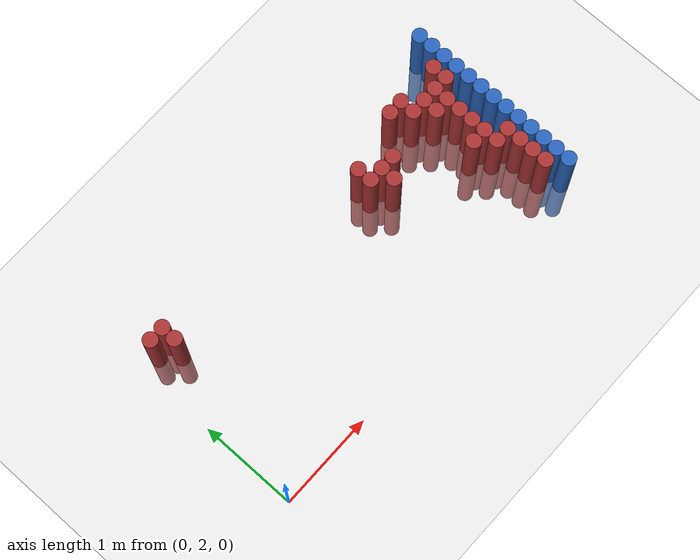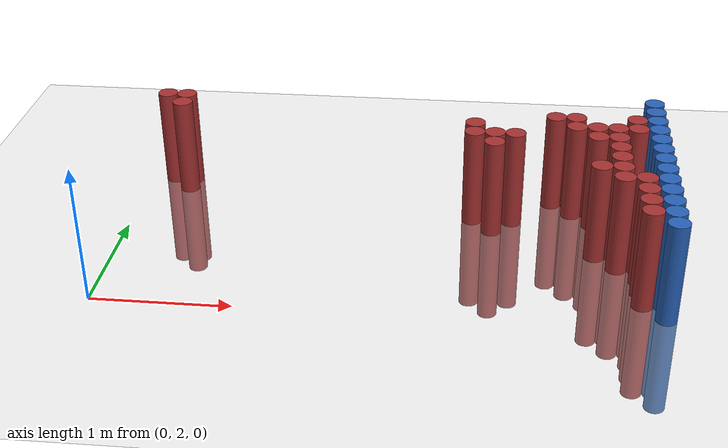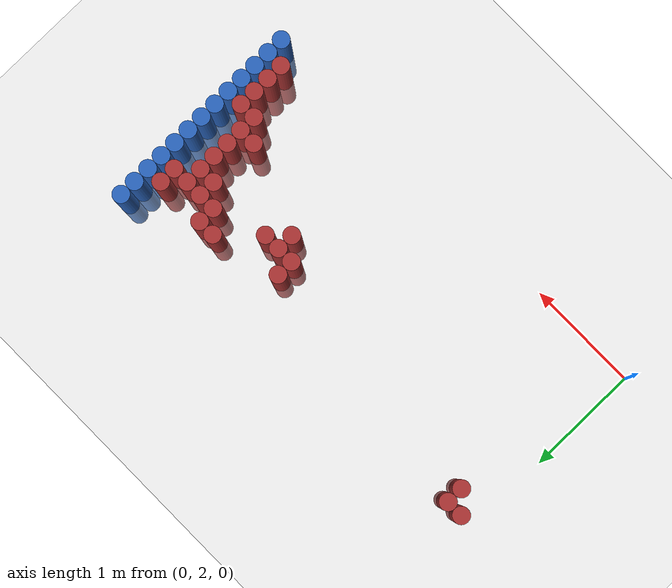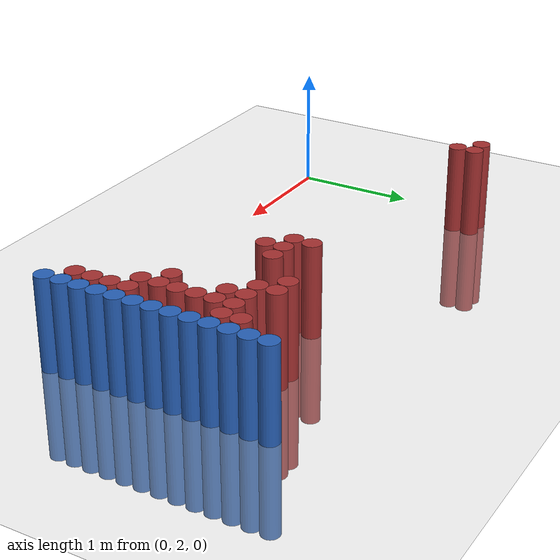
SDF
<sdf version="1.6">
 <world name="default">
  <model name="ground_plane">
   <static>1</static>
   <link name="link">
    <collision name="collision">
     <geometry><plane><normal>0 0 1</normal><size>100 100</size></plane></geometry>
     <surface><friction><ode><mu>100</mu><mu2>50</mu2></ode></friction></surface>
    </collision>
    <visual name="visual">
     <cast_shadows>0</cast_shadows>
     <geometry><plane><normal>0 0 1</normal><size>100 100</size></plane></geometry>
     <material>
      <script><uri>file://media/materials/scripts/gazebo.material</uri><name>Gazebo/Grey</name></script>
     </material>
    </visual>
   </link>
  </model>
  <model name="unit_cylinder_144">
   <static>1</static>
   <pose>3.925000 2.275000 0.000000 0.000000 0.000000 0.000000</pose>
   <link name="link">
    <inertial>
     <mass>1</mass>
     <inertia><ixx>0.145833</ixx><ixy>0</ixy><ixz>0</ixz><iyy>0.145833</iyy><iyz>0</iyz><izz>0.125</izz></inertia>
    </inertial>
    <collision name="collision">
     <geometry><cylinder><radius>0.075000</radius><length>1.5</length></cylinder></geometry>
    </collision>
    <visual name="visual">
     <geometry><cylinder><radius>0.075000</radius><length>1.5</length></cylinder></geometry>
     <material>
      <ambient>0.152000 0.379000 0.720000 1</ambient>
      <diffuse>0.152000 0.379000 0.720000 1</diffuse>
     </material>
     <material>
      <script><name>Gazebo/Grey</name><uri>file://media/materials/scripts/gazebo.material</uri></script>
     </material>
    </visual>
   </link>
  </model>
  <model name="unit_cylinder_146">
   <static>1</static>
   <pose>3.925000 2.425000 0.000000 0.000000 0.000000 0.000000</pose>
   <link name="link">
    <inertial>
     <mass>1</mass>
     <inertia><ixx>0.145833</ixx><ixy>0</ixy><ixz>0</ixz><iyy>0.145833</iyy><iyz>0</iyz><izz>0.125</izz></inertia>
    </inertial>
    <collision name="collision">
     <geometry><cylinder><radius>0.075000</radius><length>1.5</length></cylinder></geometry>
    </collision>
    <visual name="visual">
     <geometry><cylinder><radius>0.075000</radius><length>1.5</length></cylinder></geometry>
     <material>
      <ambient>0.152000 0.379000 0.720000 1</ambient>
      <diffuse>0.152000 0.379000 0.720000 1</diffuse>
     </material>
     <material>
      <script><name>Gazebo/Grey</name><uri>file://media/materials/scripts/gazebo.material</uri></script>
     </material>
    </visual>
   </link>
  </model>
  <model name="unit_cylinder_148">
   <static>1</static>
   <pose>3.925000 2.575000 0.000000 0.000000 0.000000 0.000000</pose>
   <link name="link">
    <inertial>
     <mass>1</mass>
     <inertia><ixx>0.145833</ixx><ixy>0</ixy><ixz>0</ixz><iyy>0.145833</iyy><iyz>0</iyz><izz>0.125</izz></inertia>
    </inertial>
    <collision name="collision">
     <geometry><cylinder><radius>0.075000</radius><length>1.5</length></cylinder></geometry>
    </collision>
    <visual name="visual">
     <geometry><cylinder><radius>0.075000</radius><length>1.5</length></cylinder></geometry>
     <material>
      <ambient>0.152000 0.379000 0.720000 1</ambient>
      <diffuse>0.152000 0.379000 0.720000 1</diffuse>
     </material>
     <material>
      <script><name>Gazebo/Grey</name><uri>file://media/materials/scripts/gazebo.material</uri></script>
     </material>
    </visual>
   </link>
  </model>
  <model name="unit_cylinder_150">
   <static>1</static>
   <pose>3.925000 2.725000 0.000000 0.000000 0.000000 0.000000</pose>
   <link name="link">
    <inertial>
     <mass>1</mass>
     <inertia><ixx>0.145833</ixx><ixy>0</ixy><ixz>0</ixz><iyy>0.145833</iyy><iyz>0</iyz><izz>0.125</izz></inertia>
    </inertial>
    <collision name="collision">
     <geometry><cylinder><radius>0.075000</radius><length>1.5</length></cylinder></geometry>
    </collision>
    <visual name="visual">
     <geometry><cylinder><radius>0.075000</radius><length>1.5</length></cylinder></geometry>
     <material>
      <ambient>0.152000 0.379000 0.720000 1</ambient>
      <diffuse>0.152000 0.379000 0.720000 1</diffuse>
     </material>
     <material>
      <script><name>Gazebo/Grey</name><uri>file://media/materials/scripts/gazebo.material</uri></script>
     </material>
    </visual>
   </link>
  </model>
  <model name="unit_cylinder_152">
   <static>1</static>
   <pose>3.925000 2.875000 0.000000 0.000000 0.000000 0.000000</pose>
   <link name="link">
    <inertial>
     <mass>1</mass>
     <inertia><ixx>0.145833</ixx><ixy>0</ixy><ixz>0</ixz><iyy>0.145833</iyy><iyz>0</iyz><izz>0.125</izz></inertia>
    </inertial>
    <collision name="collision">
     <geometry><cylinder><radius>0.075000</radius><length>1.5</length></cylinder></geometry>
    </collision>
    <visual name="visual">
     <geometry><cylinder><radius>0.075000</radius><length>1.5</length></cylinder></geometry>
     <material>
      <ambient>0.152000 0.379000 0.720000 1</ambient>
      <diffuse>0.152000 0.379000 0.720000 1</diffuse>
     </material>
     <material>
      <script><name>Gazebo/Grey</name><uri>file://media/materials/scripts/gazebo.material</uri></script>
     </material>
    </visual>
   </link>
  </model>
  <model name="unit_cylinder_154">
   <static>1</static>
   <pose>3.925000 3.025000 0.000000 0.000000 0.000000 0.000000</pose>
   <link name="link">
    <inertial>
     <mass>1</mass>
     <inertia><ixx>0.145833</ixx><ixy>0</ixy><ixz>0</ixz><iyy>0.145833</iyy><iyz>0</iyz><izz>0.125</izz></inertia>
    </inertial>
    <collision name="collision">
     <geometry><cylinder><radius>0.075000</radius><length>1.5</length></cylinder></geometry>
    </collision>
    <visual name="visual">
     <geometry><cylinder><radius>0.075000</radius><length>1.5</length></cylinder></geometry>
     <material>
      <ambient>0.152000 0.379000 0.720000 1</ambient>
      <diffuse>0.152000 0.379000 0.720000 1</diffuse>
     </material>
     <material>
      <script><name>Gazebo/Grey</name><uri>file://media/materials/scripts/gazebo.material</uri></script>
     </material>
    </visual>
   </link>
  </model>
  <model name="unit_cylinder_156">
   <static>1</static>
   <pose>3.925000 3.175000 0.000000 0.000000 0.000000 0.000000</pose>
   <link name="link">
    <inertial>
     <mass>1</mass>
     <inertia><ixx>0.145833</ixx><ixy>0</ixy><ixz>0</ixz><iyy>0.145833</iyy><iyz>0</iyz><izz>0.125</izz></inertia>
    </inertial>
    <collision name="collision">
     <geometry><cylinder><radius>0.075000</radius><length>1.5</length></cylinder></geometry>
    </collision>
    <visual name="visual">
     <geometry><cylinder><radius>0.075000</radius><length>1.5</length></cylinder></geometry>
     <material>
      <ambient>0.152000 0.379000 0.720000 1</ambient>
      <diffuse>0.152000 0.379000 0.720000 1</diffuse>
     </material>
     <material>
      <script><name>Gazebo/Grey</name><uri>file://media/materials/scripts/gazebo.material</uri></script>
     </material>
    </visual>
   </link>
  </model>
  <model name="unit_cylinder_158">
   <static>1</static>
   <pose>3.925000 3.325000 0.000000 0.000000 0.000000 0.000000</pose>
   <link name="link">
    <inertial>
     <mass>1</mass>
     <inertia><ixx>0.145833</ixx><ixy>0</ixy><ixz>0</ixz><iyy>0.145833</iyy><iyz>0</iyz><izz>0.125</izz></inertia>
    </inertial>
    <collision name="collision">
     <geometry><cylinder><radius>0.075000</radius><length>1.5</length></cylinder></geometry>
    </collision>
    <visual name="visual">
     <geometry><cylinder><radius>0.075000</radius><length>1.5</length></cylinder></geometry>
     <material>
      <ambient>0.152000 0.379000 0.720000 1</ambient>
      <diffuse>0.152000 0.379000 0.720000 1</diffuse>
     </material>
     <material>
      <script><name>Gazebo/Grey</name><uri>file://media/materials/scripts/gazebo.material</uri></script>
     </material>
    </visual>
   </link>
  </model>
  <model name="unit_cylinder_160">
   <static>1</static>
   <pose>3.925000 3.475000 0.000000 0.000000 0.000000 0.000000</pose>
   <link name="link">
    <inertial>
     <mass>1</mass>
     <inertia><ixx>0.145833</ixx><ixy>0</ixy><ixz>0</ixz><iyy>0.145833</iyy><iyz>0</iyz><izz>0.125</izz></inertia>
    </inertial>
    <collision name="collision">
     <geometry><cylinder><radius>0.075000</radius><length>1.5</length></cylinder></geometry>
    </collision>
    <visual name="visual">
     <geometry><cylinder><radius>0.075000</radius><length>1.5</length></cylinder></geometry>
     <material>
      <ambient>0.152000 0.379000 0.720000 1</ambient>
      <diffuse>0.152000 0.379000 0.720000 1</diffuse>
     </material>
     <material>
      <script><name>Gazebo/Grey</name><uri>file://media/materials/scripts/gazebo.material</uri></script>
     </material>
    </visual>
   </link>
  </model>
  <model name="unit_cylinder_162">
   <static>1</static>
   <pose>3.925000 3.625000 0.000000 0.000000 0.000000 0.000000</pose>
   <link name="link">
    <inertial>
     <mass>1</mass>
     <inertia><ixx>0.145833</ixx><ixy>0</ixy><ixz>0</ixz><iyy>0.145833</iyy><iyz>0</iyz><izz>0.125</izz></inertia>
    </inertial>
    <collision name="collision">
     <geometry><cylinder><radius>0.075000</radius><length>1.5</length></cylinder></geometry>
    </collision>
    <visual name="visual">
     <geometry><cylinder><radius>0.075000</radius><length>1.5</length></cylinder></geometry>
     <material>
      <ambient>0.152000 0.379000 0.720000 1</ambient>
      <diffuse>0.152000 0.379000 0.720000 1</diffuse>
     </material>
     <material>
      <script><name>Gazebo/Grey</name><uri>file://media/materials/scripts/gazebo.material</uri></script>
     </material>
    </visual>
   </link>
  </model>
  <model name="unit_cylinder_164">
   <static>1</static>
   <pose>3.925000 3.775000 0.000000 0.000000 0.000000 0.000000</pose>
   <link name="link">
    <inertial>
     <mass>1</mass>
     <inertia><ixx>0.145833</ixx><ixy>0</ixy><ixz>0</ixz><iyy>0.145833</iyy><iyz>0</iyz><izz>0.125</izz></inertia>
    </inertial>
    <collision name="collision">
     <geometry><cylinder><radius>0.075000</radius><length>1.5</length></cylinder></geometry>
    </collision>
    <visual name="visual">
     <geometry><cylinder><radius>0.075000</radius><length>1.5</length></cylinder></geometry>
     <material>
      <ambient>0.152000 0.379000 0.720000 1</ambient>
      <diffuse>0.152000 0.379000 0.720000 1</diffuse>
     </material>
     <material>
      <script><name>Gazebo/Grey</name><uri>file://media/materials/scripts/gazebo.material</uri></script>
     </material>
    </visual>
   </link>
  </model>
  <model name="unit_cylinder_166">
   <static>1</static>
   <pose>3.925000 3.925000 0.000000 0.000000 0.000000 0.000000</pose>
   <link name="link">
    <inertial>
     <mass>1</mass>
     <inertia><ixx>0.145833</ixx><ixy>0</ixy><ixz>0</ixz><iyy>0.145833</iyy><iyz>0</iyz><izz>0.125</izz></inertia>
    </inertial>
    <collision name="collision">
     <geometry><cylinder><radius>0.075000</radius><length>1.5</length></cylinder></geometry>
    </collision>
    <visual name="visual">
     <geometry><cylinder><radius>0.075000</radius><length>1.5</length></cylinder></geometry>
     <material>
      <ambient>0.152000 0.379000 0.720000 1</ambient>
      <diffuse>0.152000 0.379000 0.720000 1</diffuse>
     </material>
     <material>
      <script><name>Gazebo/Grey</name><uri>file://media/materials/scripts/gazebo.material</uri></script>
     </material>
    </visual>
   </link>
  </model>
  <model name="unit_cylinder_423">
   <static>1</static>
   <pose>0.175000 3.775000 0.000000 0.000000 0.000000 0.000000</pose>
   <link name="link">
    <inertial>
     <mass>1</mass>
     <inertia><ixx>0.145833</ixx><ixy>0</ixy><ixz>0</ixz><iyy>0.145833</iyy><iyz>0</iyz><izz>0.125</izz></inertia>
    </inertial>
    <collision name="collision">
     <geometry><cylinder><radius>0.075000</radius><length>1.5</length></cylinder></geometry>
    </collision>
    <visual name="visual">
     <geometry><cylinder><radius>0.075000</radius><length>1.5</length></cylinder></geometry>
     <material>
      <ambient>0.648000 0.192000 0.192000 1</ambient>
      <diffuse>0.648000 0.192000 0.192000 1</diffuse>
     </material>
     <material>
      <script><name>Gazebo/Grey</name><uri>file://media/materials/scripts/gazebo.material</uri></script>
     </material>
    </visual>
   </link>
  </model>
  <model name="unit_cylinder_429">
   <static>1</static>
   <pose>0.325000 3.625000 0.000000 0.000000 0.000000 0.000000</pose>
   <link name="link">
    <inertial>
     <mass>1</mass>
     <inertia><ixx>0.145833</ixx><ixy>0</ixy><ixz>0</ixz><iyy>0.145833</iyy><iyz>0</iyz><izz>0.125</izz></inertia>
    </inertial>
    <collision name="collision">
     <geometry><cylinder><radius>0.075000</radius><length>1.5</length></cylinder></geometry>
    </collision>
    <visual name="visual">
     <geometry><cylinder><radius>0.075000</radius><length>1.5</length></cylinder></geometry>
     <material>
      <ambient>0.648000 0.192000 0.192000 1</ambient>
      <diffuse>0.648000 0.192000 0.192000 1</diffuse>
     </material>
     <material>
      <script><name>Gazebo/Grey</name><uri>file://media/materials/scripts/gazebo.material</uri></script>
     </material>
    </visual>
   </link>
  </model>
  <model name="unit_cylinder_430">
   <static>1</static>
   <pose>0.325000 3.775000 0.000000 0.000000 0.000000 0.000000</pose>
   <link name="link">
    <inertial>
     <mass>1</mass>
     <inertia><ixx>0.145833</ixx><ixy>0</ixy><ixz>0</ixz><iyy>0.145833</iyy><iyz>0</iyz><izz>0.125</izz></inertia>
    </inertial>
    <collision name="collision">
     <geometry><cylinder><radius>0.075000</radius><length>1.5</length></cylinder></geometry>
    </collision>
    <visual name="visual">
     <geometry><cylinder><radius>0.075000</radius><length>1.5</length></cylinder></geometry>
     <material>
      <ambient>0.648000 0.192000 0.192000 1</ambient>
      <diffuse>0.648000 0.192000 0.192000 1</diffuse>
     </material>
     <material>
      <script><name>Gazebo/Grey</name><uri>file://media/materials/scripts/gazebo.material</uri></script>
     </material>
    </visual>
   </link>
  </model>
  <model name="unit_cylinder_490">
   <static>1</static>
   <pose>2.575000 3.325000 0.000000 0.000000 0.000000 0.000000</pose>
   <link name="link">
    <inertial>
     <mass>1</mass>
     <inertia><ixx>0.145833</ixx><ixy>0</ixy><ixz>0</ixz><iyy>0.145833</iyy><iyz>0</iyz><izz>0.125</izz></inertia>
    </inertial>
    <collision name="collision">
     <geometry><cylinder><radius>0.075000</radius><length>1.5</length></cylinder></geometry>
    </collision>
    <visual name="visual">
     <geometry><cylinder><radius>0.075000</radius><length>1.5</length></cylinder></geometry>
     <material>
      <ambient>0.648000 0.192000 0.192000 1</ambient>
      <diffuse>0.648000 0.192000 0.192000 1</diffuse>
     </material>
     <material>
      <script><name>Gazebo/Grey</name><uri>file://media/materials/scripts/gazebo.material</uri></script>
     </material>
    </visual>
   </link>
  </model>
  <model name="unit_cylinder_491">
   <static>1</static>
   <pose>2.575000 3.475000 0.000000 0.000000 0.000000 0.000000</pose>
   <link name="link">
    <inertial>
     <mass>1</mass>
     <inertia><ixx>0.145833</ixx><ixy>0</ixy><ixz>0</ixz><iyy>0.145833</iyy><iyz>0</iyz><izz>0.125</izz></inertia>
    </inertial>
    <collision name="collision">
     <geometry><cylinder><radius>0.075000</radius><length>1.5</length></cylinder></geometry>
    </collision>
    <visual name="visual">
     <geometry><cylinder><radius>0.075000</radius><length>1.5</length></cylinder></geometry>
     <material>
      <ambient>0.648000 0.192000 0.192000 1</ambient>
      <diffuse>0.648000 0.192000 0.192000 1</diffuse>
     </material>
     <material>
      <script><name>Gazebo/Grey</name><uri>file://media/materials/scripts/gazebo.material</uri></script>
     </material>
    </visual>
   </link>
  </model>
  <model name="unit_cylinder_498">
   <static>1</static>
   <pose>2.725000 3.175000 0.000000 0.000000 0.000000 0.000000</pose>
   <link name="link">
    <inertial>
     <mass>1</mass>
     <inertia><ixx>0.145833</ixx><ixy>0</ixy><ixz>0</ixz><iyy>0.145833</iyy><iyz>0</iyz><izz>0.125</izz></inertia>
    </inertial>
    <collision name="collision">
     <geometry><cylinder><radius>0.075000</radius><length>1.5</length></cylinder></geometry>
    </collision>
    <visual name="visual">
     <geometry><cylinder><radius>0.075000</radius><length>1.5</length></cylinder></geometry>
     <material>
      <ambient>0.648000 0.192000 0.192000 1</ambient>
      <diffuse>0.648000 0.192000 0.192000 1</diffuse>
     </material>
     <material>
      <script><name>Gazebo/Grey</name><uri>file://media/materials/scripts/gazebo.material</uri></script>
     </material>
    </visual>
   </link>
  </model>
  <model name="unit_cylinder_499">
   <static>1</static>
   <pose>2.725000 3.325000 0.000000 0.000000 0.000000 0.000000</pose>
   <link name="link">
    <inertial>
     <mass>1</mass>
     <inertia><ixx>0.145833</ixx><ixy>0</ixy><ixz>0</ixz><iyy>0.145833</iyy><iyz>0</iyz><izz>0.125</izz></inertia>
    </inertial>
    <collision name="collision">
     <geometry><cylinder><radius>0.075000</radius><length>1.5</length></cylinder></geometry>
    </collision>
    <visual name="visual">
     <geometry><cylinder><radius>0.075000</radius><length>1.5</length></cylinder></geometry>
     <material>
      <ambient>0.648000 0.192000 0.192000 1</ambient>
      <diffuse>0.648000 0.192000 0.192000 1</diffuse>
     </material>
     <material>
      <script><name>Gazebo/Grey</name><uri>file://media/materials/scripts/gazebo.material</uri></script>
     </material>
    </visual>
   </link>
  </model>
  <model name="unit_cylinder_504">
   <static>1</static>
   <pose>2.875000 3.325000 0.000000 0.000000 0.000000 0.000000</pose>
   <link name="link">
    <inertial>
     <mass>1</mass>
     <inertia><ixx>0.145833</ixx><ixy>0</ixy><ixz>0</ixz><iyy>0.145833</iyy><iyz>0</iyz><izz>0.125</izz></inertia>
    </inertial>
    <collision name="collision">
     <geometry><cylinder><radius>0.075000</radius><length>1.5</length></cylinder></geometry>
    </collision>
    <visual name="visual">
     <geometry><cylinder><radius>0.075000</radius><length>1.5</length></cylinder></geometry>
     <material>
      <ambient>0.648000 0.192000 0.192000 1</ambient>
      <diffuse>0.648000 0.192000 0.192000 1</diffuse>
     </material>
     <material>
      <script><name>Gazebo/Grey</name><uri>file://media/materials/scripts/gazebo.material</uri></script>
     </material>
    </visual>
   </link>
  </model>
  <model name="unit_cylinder_507">
   <static>1</static>
   <pose>3.175000 3.625000 0.000000 0.000000 0.000000 0.000000</pose>
   <link name="link">
    <inertial>
     <mass>1</mass>
     <inertia><ixx>0.145833</ixx><ixy>0</ixy><ixz>0</ixz><iyy>0.145833</iyy><iyz>0</iyz><izz>0.125</izz></inertia>
    </inertial>
    <collision name="collision">
     <geometry><cylinder><radius>0.075000</radius><length>1.5</length></cylinder></geometry>
    </collision>
    <visual name="visual">
     <geometry><cylinder><radius>0.075000</radius><length>1.5</length></cylinder></geometry>
     <material>
      <ambient>0.648000 0.192000 0.192000 1</ambient>
      <diffuse>0.648000 0.192000 0.192000 1</diffuse>
     </material>
     <material>
      <script><name>Gazebo/Grey</name><uri>file://media/materials/scripts/gazebo.material</uri></script>
     </material>
    </visual>
   </link>
  </model>
  <model name="unit_cylinder_512">
   <static>1</static>
   <pose>3.325000 3.475000 0.000000 0.000000 0.000000 0.000000</pose>
   <link name="link">
    <inertial>
     <mass>1</mass>
     <inertia><ixx>0.145833</ixx><ixy>0</ixy><ixz>0</ixz><iyy>0.145833</iyy><iyz>0</iyz><izz>0.125</izz></inertia>
    </inertial>
    <collision name="collision">
     <geometry><cylinder><radius>0.075000</radius><length>1.5</length></cylinder></geometry>
    </collision>
    <visual name="visual">
     <geometry><cylinder><radius>0.075000</radius><length>1.5</length></cylinder></geometry>
     <material>
      <ambient>0.648000 0.192000 0.192000 1</ambient>
      <diffuse>0.648000 0.192000 0.192000 1</diffuse>
     </material>
     <material>
      <script><name>Gazebo/Grey</name><uri>file://media/materials/scripts/gazebo.material</uri></script>
     </material>
    </visual>
   </link>
  </model>
  <model name="unit_cylinder_513">
   <static>1</static>
   <pose>3.325000 3.625000 0.000000 0.000000 0.000000 0.000000</pose>
   <link name="link">
    <inertial>
     <mass>1</mass>
     <inertia><ixx>0.145833</ixx><ixy>0</ixy><ixz>0</ixz><iyy>0.145833</iyy><iyz>0</iyz><izz>0.125</izz></inertia>
    </inertial>
    <collision name="collision">
     <geometry><cylinder><radius>0.075000</radius><length>1.5</length></cylinder></geometry>
    </collision>
    <visual name="visual">
     <geometry><cylinder><radius>0.075000</radius><length>1.5</length></cylinder></geometry>
     <material>
      <ambient>0.648000 0.192000 0.192000 1</ambient>
      <diffuse>0.648000 0.192000 0.192000 1</diffuse>
     </material>
     <material>
      <script><name>Gazebo/Grey</name><uri>file://media/materials/scripts/gazebo.material</uri></script>
     </material>
    </visual>
   </link>
  </model>
  <model name="unit_cylinder_516">
   <static>1</static>
   <pose>3.475000 2.875000 0.000000 0.000000 0.000000 0.000000</pose>
   <link name="link">
    <inertial>
     <mass>1</mass>
     <inertia><ixx>0.145833</ixx><ixy>0</ixy><ixz>0</ixz><iyy>0.145833</iyy><iyz>0</iyz><izz>0.125</izz></inertia>
    </inertial>
    <collision name="collision">
     <geometry><cylinder><radius>0.075000</radius><length>1.5</length></cylinder></geometry>
    </collision>
    <visual name="visual">
     <geometry><cylinder><radius>0.075000</radius><length>1.5</length></cylinder></geometry>
     <material>
      <ambient>0.648000 0.192000 0.192000 1</ambient>
      <diffuse>0.648000 0.192000 0.192000 1</diffuse>
     </material>
     <material>
      <script><name>Gazebo/Grey</name><uri>file://media/materials/scripts/gazebo.material</uri></script>
     </material>
    </visual>
   </link>
  </model>
  <model name="unit_cylinder_517">
   <static>1</static>
   <pose>3.475000 3.325000 0.000000 0.000000 0.000000 0.000000</pose>
   <link name="link">
    <inertial>
     <mass>1</mass>
     <inertia><ixx>0.145833</ixx><ixy>0</ixy><ixz>0</ixz><iyy>0.145833</iyy><iyz>0</iyz><izz>0.125</izz></inertia>
    </inertial>
    <collision name="collision">
     <geometry><cylinder><radius>0.075000</radius><length>1.5</length></cylinder></geometry>
    </collision>
    <visual name="visual">
     <geometry><cylinder><radius>0.075000</radius><length>1.5</length></cylinder></geometry>
     <material>
      <ambient>0.648000 0.192000 0.192000 1</ambient>
      <diffuse>0.648000 0.192000 0.192000 1</diffuse>
     </material>
     <material>
      <script><name>Gazebo/Grey</name><uri>file://media/materials/scripts/gazebo.material</uri></script>
     </material>
    </visual>
   </link>
  </model>
  <model name="unit_cylinder_518">
   <static>1</static>
   <pose>3.475000 3.475000 0.000000 0.000000 0.000000 0.000000</pose>
   <link name="link">
    <inertial>
     <mass>1</mass>
     <inertia><ixx>0.145833</ixx><ixy>0</ixy><ixz>0</ixz><iyy>0.145833</iyy><iyz>0</iyz><izz>0.125</izz></inertia>
    </inertial>
    <collision name="collision">
     <geometry><cylinder><radius>0.075000</radius><length>1.5</length></cylinder></geometry>
    </collision>
    <visual name="visual">
     <geometry><cylinder><radius>0.075000</radius><length>1.5</length></cylinder></geometry>
     <material>
      <ambient>0.648000 0.192000 0.192000 1</ambient>
      <diffuse>0.648000 0.192000 0.192000 1</diffuse>
     </material>
     <material>
      <script><name>Gazebo/Grey</name><uri>file://media/materials/scripts/gazebo.material</uri></script>
     </material>
    </visual>
   </link>
  </model>
  <model name="unit_cylinder_519">
   <static>1</static>
   <pose>3.625000 2.725000 0.000000 0.000000 0.000000 0.000000</pose>
   <link name="link">
    <inertial>
     <mass>1</mass>
     <inertia><ixx>0.145833</ixx><ixy>0</ixy><ixz>0</ixz><iyy>0.145833</iyy><iyz>0</iyz><izz>0.125</izz></inertia>
    </inertial>
    <collision name="collision">
     <geometry><cylinder><radius>0.075000</radius><length>1.5</length></cylinder></geometry>
    </collision>
    <visual name="visual">
     <geometry><cylinder><radius>0.075000</radius><length>1.5</length></cylinder></geometry>
     <material>
      <ambient>0.648000 0.192000 0.192000 1</ambient>
      <diffuse>0.648000 0.192000 0.192000 1</diffuse>
     </material>
     <material>
      <script><name>Gazebo/Grey</name><uri>file://media/materials/scripts/gazebo.material</uri></script>
     </material>
    </visual>
   </link>
  </model>
  <model name="unit_cylinder_520">
   <static>1</static>
   <pose>3.625000 2.875000 0.000000 0.000000 0.000000 0.000000</pose>
   <link name="link">
    <inertial>
     <mass>1</mass>
     <inertia><ixx>0.145833</ixx><ixy>0</ixy><ixz>0</ixz><iyy>0.145833</iyy><iyz>0</iyz><izz>0.125</izz></inertia>
    </inertial>
    <collision name="collision">
     <geometry><cylinder><radius>0.075000</radius><length>1.5</length></cylinder></geometry>
    </collision>
    <visual name="visual">
     <geometry><cylinder><radius>0.075000</radius><length>1.5</length></cylinder></geometry>
     <material>
      <ambient>0.648000 0.192000 0.192000 1</ambient>
      <diffuse>0.648000 0.192000 0.192000 1</diffuse>
     </material>
     <material>
      <script><name>Gazebo/Grey</name><uri>file://media/materials/scripts/gazebo.material</uri></script>
     </material>
    </visual>
   </link>
  </model>
  <model name="unit_cylinder_521">
   <static>1</static>
   <pose>3.625000 3.025000 0.000000 0.000000 0.000000 0.000000</pose>
   <link name="link">
    <inertial>
     <mass>1</mass>
     <inertia><ixx>0.145833</ixx><ixy>0</ixy><ixz>0</ixz><iyy>0.145833</iyy><iyz>0</iyz><izz>0.125</izz></inertia>
    </inertial>
    <collision name="collision">
     <geometry><cylinder><radius>0.075000</radius><length>1.5</length></cylinder></geometry>
    </collision>
    <visual name="visual">
     <geometry><cylinder><radius>0.075000</radius><length>1.5</length></cylinder></geometry>
     <material>
      <ambient>0.648000 0.192000 0.192000 1</ambient>
      <diffuse>0.648000 0.192000 0.192000 1</diffuse>
     </material>
     <material>
      <script><name>Gazebo/Grey</name><uri>file://media/materials/scripts/gazebo.material</uri></script>
     </material>
    </visual>
   </link>
  </model>
  <model name="unit_cylinder_522">
   <static>1</static>
   <pose>3.625000 3.175000 0.000000 0.000000 0.000000 0.000000</pose>
   <link name="link">
    <inertial>
     <mass>1</mass>
     <inertia><ixx>0.145833</ixx><ixy>0</ixy><ixz>0</ixz><iyy>0.145833</iyy><iyz>0</iyz><izz>0.125</izz></inertia>
    </inertial>
    <collision name="collision">
     <geometry><cylinder><radius>0.075000</radius><length>1.5</length></cylinder></geometry>
    </collision>
    <visual name="visual">
     <geometry><cylinder><radius>0.075000</radius><length>1.5</length></cylinder></geometry>
     <material>
      <ambient>0.648000 0.192000 0.192000 1</ambient>
      <diffuse>0.648000 0.192000 0.192000 1</diffuse>
     </material>
     <material>
      <script><name>Gazebo/Grey</name><uri>file://media/materials/scripts/gazebo.material</uri></script>
     </material>
    </visual>
   </link>
  </model>
  <model name="unit_cylinder_523">
   <static>1</static>
   <pose>3.625000 3.325000 0.000000 0.000000 0.000000 0.000000</pose>
   <link name="link">
    <inertial>
     <mass>1</mass>
     <inertia><ixx>0.145833</ixx><ixy>0</ixy><ixz>0</ixz><iyy>0.145833</iyy><iyz>0</iyz><izz>0.125</izz></inertia>
    </inertial>
    <collision name="collision">
     <geometry><cylinder><radius>0.075000</radius><length>1.5</length></cylinder></geometry>
    </collision>
    <visual name="visual">
     <geometry><cylinder><radius>0.075000</radius><length>1.5</length></cylinder></geometry>
     <material>
      <ambient>0.648000 0.192000 0.192000 1</ambient>
      <diffuse>0.648000 0.192000 0.192000 1</diffuse>
     </material>
     <material>
      <script><name>Gazebo/Grey</name><uri>file://media/materials/scripts/gazebo.material</uri></script>
     </material>
    </visual>
   </link>
  </model>
  <model name="unit_cylinder_524">
   <static>1</static>
   <pose>3.625000 3.475000 0.000000 0.000000 0.000000 0.000000</pose>
   <link name="link">
    <inertial>
     <mass>1</mass>
     <inertia><ixx>0.145833</ixx><ixy>0</ixy><ixz>0</ixz><iyy>0.145833</iyy><iyz>0</iyz><izz>0.125</izz></inertia>
    </inertial>
    <collision name="collision">
     <geometry><cylinder><radius>0.075000</radius><length>1.5</length></cylinder></geometry>
    </collision>
    <visual name="visual">
     <geometry><cylinder><radius>0.075000</radius><length>1.5</length></cylinder></geometry>
     <material>
      <ambient>0.648000 0.192000 0.192000 1</ambient>
      <diffuse>0.648000 0.192000 0.192000 1</diffuse>
     </material>
     <material>
      <script><name>Gazebo/Grey</name><uri>file://media/materials/scripts/gazebo.material</uri></script>
     </material>
    </visual>
   </link>
  </model>
  <model name="unit_cylinder_542">
   <static>1</static>
   <pose>3.775000 2.275000 0.000000 0.000000 0.000000 0.000000</pose>
   <link name="link">
    <inertial>
     <mass>1</mass>
     <inertia><ixx>0.145833</ixx><ixy>0</ixy><ixz>0</ixz><iyy>0.145833</iyy><iyz>0</iyz><izz>0.125</izz></inertia>
    </inertial>
    <collision name="collision">
     <geometry><cylinder><radius>0.075000</radius><length>1.5</length></cylinder></geometry>
    </collision>
    <visual name="visual">
     <geometry><cylinder><radius>0.075000</radius><length>1.5</length></cylinder></geometry>
     <material>
      <ambient>0.648000 0.192000 0.192000 1</ambient>
      <diffuse>0.648000 0.192000 0.192000 1</diffuse>
     </material>
     <material>
      <script><name>Gazebo/Grey</name><uri>file://media/materials/scripts/gazebo.material</uri></script>
     </material>
    </visual>
   </link>
  </model>
  <model name="unit_cylinder_543">
   <static>1</static>
   <pose>3.775000 2.425000 0.000000 0.000000 0.000000 0.000000</pose>
   <link name="link">
    <inertial>
     <mass>1</mass>
     <inertia><ixx>0.145833</ixx><ixy>0</ixy><ixz>0</ixz><iyy>0.145833</iyy><iyz>0</iyz><izz>0.125</izz></inertia>
    </inertial>
    <collision name="collision">
     <geometry><cylinder><radius>0.075000</radius><length>1.5</length></cylinder></geometry>
    </collision>
    <visual name="visual">
     <geometry><cylinder><radius>0.075000</radius><length>1.5</length></cylinder></geometry>
     <material>
      <ambient>0.648000 0.192000 0.192000 1</ambient>
      <diffuse>0.648000 0.192000 0.192000 1</diffuse>
     </material>
     <material>
      <script><name>Gazebo/Grey</name><uri>file://media/materials/scripts/gazebo.material</uri></script>
     </material>
    </visual>
   </link>
  </model>
  <model name="unit_cylinder_544">
   <static>1</static>
   <pose>3.775000 2.575000 0.000000 0.000000 0.000000 0.000000</pose>
   <link name="link">
    <inertial>
     <mass>1</mass>
     <inertia><ixx>0.145833</ixx><ixy>0</ixy><ixz>0</ixz><iyy>0.145833</iyy><iyz>0</iyz><izz>0.125</izz></inertia>
    </inertial>
    <collision name="collision">
     <geometry><cylinder><radius>0.075000</radius><length>1.5</length></cylinder></geometry>
    </collision>
    <visual name="visual">
     <geometry><cylinder><radius>0.075000</radius><length>1.5</length></cylinder></geometry>
     <material>
      <ambient>0.648000 0.192000 0.192000 1</ambient>
      <diffuse>0.648000 0.192000 0.192000 1</diffuse>
     </material>
     <material>
      <script><name>Gazebo/Grey</name><uri>file://media/materials/scripts/gazebo.material</uri></script>
     </material>
    </visual>
   </link>
  </model>
  <model name="unit_cylinder_545">
   <static>1</static>
   <pose>3.775000 2.725000 0.000000 0.000000 0.000000 0.000000</pose>
   <link name="link">
    <inertial>
     <mass>1</mass>
     <inertia><ixx>0.145833</ixx><ixy>0</ixy><ixz>0</ixz><iyy>0.145833</iyy><iyz>0</iyz><izz>0.125</izz></inertia>
    </inertial>
    <collision name="collision">
     <geometry><cylinder><radius>0.075000</radius><length>1.5</length></cylinder></geometry>
    </collision>
    <visual name="visual">
     <geometry><cylinder><radius>0.075000</radius><length>1.5</length></cylinder></geometry>
     <material>
      <ambient>0.648000 0.192000 0.192000 1</ambient>
      <diffuse>0.648000 0.192000 0.192000 1</diffuse>
     </material>
     <material>
      <script><name>Gazebo/Grey</name><uri>file://media/materials/scripts/gazebo.material</uri></script>
     </material>
    </visual>
   </link>
  </model>
  <model name="unit_cylinder_546">
   <static>1</static>
   <pose>3.775000 3.475000 0.000000 0.000000 0.000000 0.000000</pose>
   <link name="link">
    <inertial>
     <mass>1</mass>
     <inertia><ixx>0.145833</ixx><ixy>0</ixy><ixz>0</ixz><iyy>0.145833</iyy><iyz>0</iyz><izz>0.125</izz></inertia>
    </inertial>
    <collision name="collision">
     <geometry><cylinder><radius>0.075000</radius><length>1.5</length></cylinder></geometry>
    </collision>
    <visual name="visual">
     <geometry><cylinder><radius>0.075000</radius><length>1.5</length></cylinder></geometry>
     <material>
      <ambient>0.648000 0.192000 0.192000 1</ambient>
      <diffuse>0.648000 0.192000 0.192000 1</diffuse>
     </material>
     <material>
      <script><name>Gazebo/Grey</name><uri>file://media/materials/scripts/gazebo.material</uri></script>
     </material>
    </visual>
   </link>
  </model>
  <model name="unit_cylinder_547">
   <static>1</static>
   <pose>3.775000 3.625000 0.000000 0.000000 0.000000 0.000000</pose>
   <link name="link">
    <inertial>
     <mass>1</mass>
     <inertia><ixx>0.145833</ixx><ixy>0</ixy><ixz>0</ixz><iyy>0.145833</iyy><iyz>0</iyz><izz>0.125</izz></inertia>
    </inertial>
    <collision name="collision">
     <geometry><cylinder><radius>0.075000</radius><length>1.5</length></cylinder></geometry>
    </collision>
    <visual name="visual">
     <geometry><cylinder><radius>0.075000</radius><length>1.5</length></cylinder></geometry>
     <material>
      <ambient>0.648000 0.192000 0.192000 1</ambient>
      <diffuse>0.648000 0.192000 0.192000 1</diffuse>
     </material>
     <material>
      <script><name>Gazebo/Grey</name><uri>file://media/materials/scripts/gazebo.material</uri></script>
     </material>
    </visual>
   </link>
  </model>
  <model name="unit_cylinder_581">
   <static>1</static>
   <pose>3.925000 2.125000 0.000000 0.000000 0.000000 0.000000</pose>
   <link name="link">
    <inertial>
     <mass>1</mass>
     <inertia><ixx>0.145833</ixx><ixy>0</ixy><ixz>0</ixz><iyy>0.145833</iyy><iyz>0</iyz><izz>0.125</izz></inertia>
    </inertial>
    <collision name="collision">
     <geometry><cylinder><radius>0.075000</radius><length>1.5</length></cylinder></geometry>
    </collision>
    <visual name="visual">
     <geometry><cylinder><radius>0.075000</radius><length>1.5</length></cylinder></geometry>
     <material>
      <ambient>0.152000 0.379000 0.720000 1</ambient>
      <diffuse>0.152000 0.379000 0.720000 1</diffuse>
     </material>
     <material>
      <script><name>Gazebo/Grey</name><uri>file://media/materials/scripts/gazebo.material</uri></script>
     </material>
    </visual>
   </link>
  </model>
  <model name="unit_cylinder_582">
   <static>1</static>
   <pose>3.925000 2.275000 0.000000 0.000000 0.000000 0.000000</pose>
   <link name="link">
    <inertial>
     <mass>1</mass>
     <inertia><ixx>0.145833</ixx><ixy>0</ixy><ixz>0</ixz><iyy>0.145833</iyy><iyz>0</iyz><izz>0.125</izz></inertia>
    </inertial>
    <collision name="collision">
     <geometry><cylinder><radius>0.075000</radius><length>1.5</length></cylinder></geometry>
    </collision>
    <visual name="visual">
     <geometry><cylinder><radius>0.075000</radius><length>1.5</length></cylinder></geometry>
     <material>
      <ambient>0.152000 0.379000 0.720000 1</ambient>
      <diffuse>0.152000 0.379000 0.720000 1</diffuse>
     </material>
     <material>
      <script><name>Gazebo/Grey</name><uri>file://media/materials/scripts/gazebo.material</uri></script>
     </material>
    </visual>
   </link>
  </model>
  <model name="unit_cylinder_583">
   <static>1</static>
   <pose>3.925000 2.425000 0.000000 0.000000 0.000000 0.000000</pose>
   <link name="link">
    <inertial>
     <mass>1</mass>
     <inertia><ixx>0.145833</ixx><ixy>0</ixy><ixz>0</ixz><iyy>0.145833</iyy><iyz>0</iyz><izz>0.125</izz></inertia>
    </inertial>
    <collision name="collision">
     <geometry><cylinder><radius>0.075000</radius><length>1.5</length></cylinder></geometry>
    </collision>
    <visual name="visual">
     <geometry><cylinder><radius>0.075000</radius><length>1.5</length></cylinder></geometry>
     <material>
      <ambient>0.152000 0.379000 0.720000 1</ambient>
      <diffuse>0.152000 0.379000 0.720000 1</diffuse>
     </material>
     <material>
      <script><name>Gazebo/Grey</name><uri>file://media/materials/scripts/gazebo.material</uri></script>
     </material>
    </visual>
   </link>
  </model>
  <model name="unit_cylinder_584">
   <static>1</static>
   <pose>3.925000 2.575000 0.000000 0.000000 0.000000 0.000000</pose>
   <link name="link">
    <inertial>
     <mass>1</mass>
     <inertia><ixx>0.145833</ixx><ixy>0</ixy><ixz>0</ixz><iyy>0.145833</iyy><iyz>0</iyz><izz>0.125</izz></inertia>
    </inertial>
    <collision name="collision">
     <geometry><cylinder><radius>0.075000</radius><length>1.5</length></cylinder></geometry>
    </collision>
    <visual name="visual">
     <geometry><cylinder><radius>0.075000</radius><length>1.5</length></cylinder></geometry>
     <material>
      <ambient>0.152000 0.379000 0.720000 1</ambient>
      <diffuse>0.152000 0.379000 0.720000 1</diffuse>
     </material>
     <material>
      <script><name>Gazebo/Grey</name><uri>file://media/materials/scripts/gazebo.material</uri></script>
     </material>
    </visual>
   </link>
  </model>
  <model name="unit_cylinder_585">
   <static>1</static>
   <pose>3.925000 2.725000 0.000000 0.000000 0.000000 0.000000</pose>
   <link name="link">
    <inertial>
     <mass>1</mass>
     <inertia><ixx>0.145833</ixx><ixy>0</ixy><ixz>0</ixz><iyy>0.145833</iyy><iyz>0</iyz><izz>0.125</izz></inertia>
    </inertial>
    <collision name="collision">
     <geometry><cylinder><radius>0.075000</radius><length>1.5</length></cylinder></geometry>
    </collision>
    <visual name="visual">
     <geometry><cylinder><radius>0.075000</radius><length>1.5</length></cylinder></geometry>
     <material>
      <ambient>0.152000 0.379000 0.720000 1</ambient>
      <diffuse>0.152000 0.379000 0.720000 1</diffuse>
     </material>
     <material>
      <script><name>Gazebo/Grey</name><uri>file://media/materials/scripts/gazebo.material</uri></script>
     </material>
    </visual>
   </link>
  </model>
  <model name="unit_cylinder_586">
   <static>1</static>
   <pose>3.925000 2.875000 0.000000 0.000000 0.000000 0.000000</pose>
   <link name="link">
    <inertial>
     <mass>1</mass>
     <inertia><ixx>0.145833</ixx><ixy>0</ixy><ixz>0</ixz><iyy>0.145833</iyy><iyz>0</iyz><izz>0.125</izz></inertia>
    </inertial>
    <collision name="collision">
     <geometry><cylinder><radius>0.075000</radius><length>1.5</length></cylinder></geometry>
    </collision>
    <visual name="visual">
     <geometry><cylinder><radius>0.075000</radius><length>1.5</length></cylinder></geometry>
     <material>
      <ambient>0.152000 0.379000 0.720000 1</ambient>
      <diffuse>0.152000 0.379000 0.720000 1</diffuse>
     </material>
     <material>
      <script><name>Gazebo/Grey</name><uri>file://media/materials/scripts/gazebo.material</uri></script>
     </material>
    </visual>
   </link>
  </model>
  <model name="unit_cylinder_587">
   <static>1</static>
   <pose>3.925000 3.025000 0.000000 0.000000 0.000000 0.000000</pose>
   <link name="link">
    <inertial>
     <mass>1</mass>
     <inertia><ixx>0.145833</ixx><ixy>0</ixy><ixz>0</ixz><iyy>0.145833</iyy><iyz>0</iyz><izz>0.125</izz></inertia>
    </inertial>
    <collision name="collision">
     <geometry><cylinder><radius>0.075000</radius><length>1.5</length></cylinder></geometry>
    </collision>
    <visual name="visual">
     <geometry><cylinder><radius>0.075000</radius><length>1.5</length></cylinder></geometry>
     <material>
      <ambient>0.152000 0.379000 0.720000 1</ambient>
      <diffuse>0.152000 0.379000 0.720000 1</diffuse>
     </material>
     <material>
      <script><name>Gazebo/Grey</name><uri>file://media/materials/scripts/gazebo.material</uri></script>
     </material>
    </visual>
   </link>
  </model>
  <model name="unit_cylinder_588">
   <static>1</static>
   <pose>3.925000 3.175000 0.000000 0.000000 0.000000 0.000000</pose>
   <link name="link">
    <inertial>
     <mass>1</mass>
     <inertia><ixx>0.145833</ixx><ixy>0</ixy><ixz>0</ixz><iyy>0.145833</iyy><iyz>0</iyz><izz>0.125</izz></inertia>
    </inertial>
    <collision name="collision">
     <geometry><cylinder><radius>0.075000</radius><length>1.5</length></cylinder></geometry>
    </collision>
    <visual name="visual">
     <geometry><cylinder><radius>0.075000</radius><length>1.5</length></cylinder></geometry>
     <material>
      <ambient>0.152000 0.379000 0.720000 1</ambient>
      <diffuse>0.152000 0.379000 0.720000 1</diffuse>
     </material>
     <material>
      <script><name>Gazebo/Grey</name><uri>file://media/materials/scripts/gazebo.material</uri></script>
     </material>
    </visual>
   </link>
  </model>
  <model name="unit_cylinder_589">
   <static>1</static>
   <pose>3.925000 3.325000 0.000000 0.000000 0.000000 0.000000</pose>
   <link name="link">
    <inertial>
     <mass>1</mass>
     <inertia><ixx>0.145833</ixx><ixy>0</ixy><ixz>0</ixz><iyy>0.145833</iyy><iyz>0</iyz><izz>0.125</izz></inertia>
    </inertial>
    <collision name="collision">
     <geometry><cylinder><radius>0.075000</radius><length>1.5</length></cylinder></geometry>
    </collision>
    <visual name="visual">
     <geometry><cylinder><radius>0.075000</radius><length>1.5</length></cylinder></geometry>
     <material>
      <ambient>0.152000 0.379000 0.720000 1</ambient>
      <diffuse>0.152000 0.379000 0.720000 1</diffuse>
     </material>
     <material>
      <script><name>Gazebo/Grey</name><uri>file://media/materials/scripts/gazebo.material</uri></script>
     </material>
    </visual>
   </link>
  </model>
  <model name="unit_cylinder_590">
   <static>1</static>
   <pose>3.925000 3.475000 0.000000 0.000000 0.000000 0.000000</pose>
   <link name="link">
    <inertial>
     <mass>1</mass>
     <inertia><ixx>0.145833</ixx><ixy>0</ixy><ixz>0</ixz><iyy>0.145833</iyy><iyz>0</iyz><izz>0.125</izz></inertia>
    </inertial>
    <collision name="collision">
     <geometry><cylinder><radius>0.075000</radius><length>1.5</length></cylinder></geometry>
    </collision>
    <visual name="visual">
     <geometry><cylinder><radius>0.075000</radius><length>1.5</length></cylinder></geometry>
     <material>
      <ambient>0.152000 0.379000 0.720000 1</ambient>
      <diffuse>0.152000 0.379000 0.720000 1</diffuse>
     </material>
     <material>
      <script><name>Gazebo/Grey</name><uri>file://media/materials/scripts/gazebo.material</uri></script>
     </material>
    </visual>
   </link>
  </model>
  <model name="unit_cylinder_591">
   <static>1</static>
   <pose>3.925000 3.625000 0.000000 0.000000 0.000000 0.000000</pose>
   <link name="link">
    <inertial>
     <mass>1</mass>
     <inertia><ixx>0.145833</ixx><ixy>0</ixy><ixz>0</ixz><iyy>0.145833</iyy><iyz>0</iyz><izz>0.125</izz></inertia>
    </inertial>
    <collision name="collision">
     <geometry><cylinder><radius>0.075000</radius><length>1.5</length></cylinder></geometry>
    </collision>
    <visual name="visual">
     <geometry><cylinder><radius>0.075000</radius><length>1.5</length></cylinder></geometry>
     <material>
      <ambient>0.152000 0.379000 0.720000 1</ambient>
      <diffuse>0.152000 0.379000 0.720000 1</diffuse>
     </material>
     <material>
      <script><name>Gazebo/Grey</name><uri>file://media/materials/scripts/gazebo.material</uri></script>
     </material>
    </visual>
   </link>
  </model>
  <model name="unit_cylinder_592">
   <static>1</static>
   <pose>3.925000 3.775000 0.000000 0.000000 0.000000 0.000000</pose>
   <link name="link">
    <inertial>
     <mass>1</mass>
     <inertia><ixx>0.145833</ixx><ixy>0</ixy><ixz>0</ixz><iyy>0.145833</iyy><iyz>0</iyz><izz>0.125</izz></inertia>
    </inertial>
    <collision name="collision">
     <geometry><cylinder><radius>0.075000</radius><length>1.5</length></cylinder></geometry>
    </collision>
    <visual name="visual">
     <geometry><cylinder><radius>0.075000</radius><length>1.5</length></cylinder></geometry>
     <material>
      <ambient>0.152000 0.379000 0.720000 1</ambient>
      <diffuse>0.152000 0.379000 0.720000 1</diffuse>
     </material>
     <material>
      <script><name>Gazebo/Grey</name><uri>file://media/materials/scripts/gazebo.material</uri></script>
     </material>
    </visual>
   </link>
  </model>
 </world>
</sdf>
